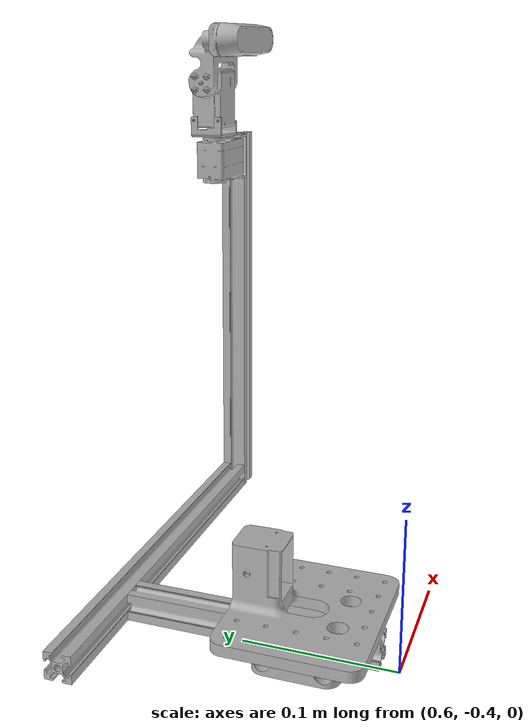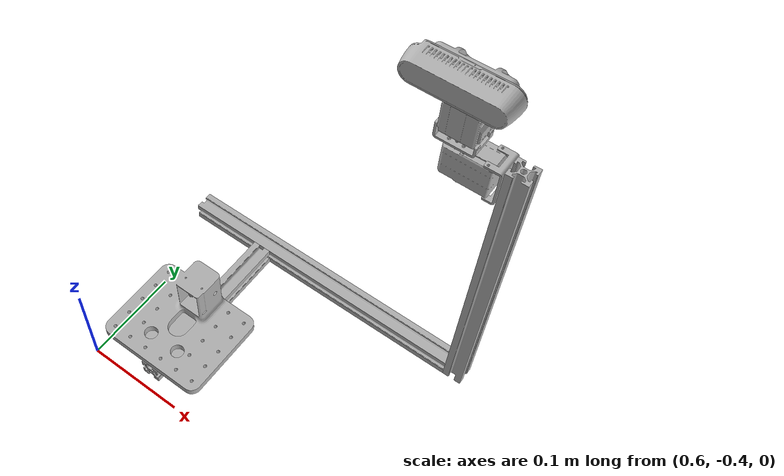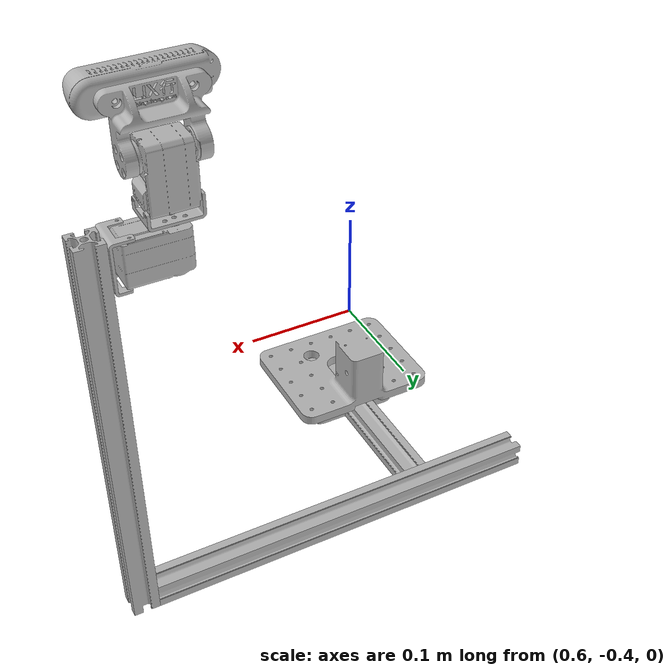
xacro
<?xml version="1.0" ?>
<robot name="mod101_harness" xmlns:xacro="http://www.ros.org/wiki/xacro">

<xacro:include filename="$(find mod101_harness)/export/materials.xacro" />
<xacro:include filename="$(find mod101_harness)/export/mod101_harness.raw.ros2control" />
<xacro:include filename="$(find mod101_harness)/export/mod101_harness.raw.gazebo" />
<link name="base_link">
  <inertial>
    <origin xyz="0.7183668847290359 -0.1898371852815478 -0.018503159635172448" rpy="0 0 0"/>
    <mass value="0.4359046662837625"/>
    <inertia ixx="3.7e-05" iyy="0.003738" izz="0.003738" ixy="-0.0" iyz="-0.0" ixz="0.0"/>
  </inertial>
  <visual>
    <origin xyz="0 0 0" rpy="0 0 0"/>
    <geometry>
      <mesh filename="file://$(find mod101_harness)/meshes/base_link.stl" scale="0.001 0.001 0.001"/>
    </geometry>
    <material name="silver"/>
  </visual>
  <collision>
    <origin xyz="0 0 0" rpy="0 0 0"/>
    <geometry>
      <mesh filename="file://$(find mod101_harness)/meshes/base_link.stl" scale="0.001 0.001 0.001"/>
    </geometry>
  </collision>
</link>

<link name="yaw_bracket_1">
  <inertial>
    <origin xyz="-0.24048767950999106 0.02833424258398279 -0.10053283234598204" rpy="0 0 0"/>
    <mass value="0.01768001501876205"/>
    <inertia ixx="4e-06" iyy="3e-06" izz="1e-06" ixy="-0.0" iyz="0.0" ixz="0.0"/>
  </inertial>
  <visual>
    <origin xyz="-1.116019 0.218172 -0.374755" rpy="0 0 0"/>
    <geometry>
      <mesh filename="file://$(find mod101_harness)/meshes/yaw_bracket_1.stl" scale="0.001 0.001 0.001"/>
    </geometry>
    <material name="silver"/>
  </visual>
  <collision>
    <origin xyz="-1.116019 0.218172 -0.374755" rpy="0 0 0"/>
    <geometry>
      <mesh filename="file://$(find mod101_harness)/meshes/yaw_bracket_1.stl" scale="0.001 0.001 0.001"/>
    </geometry>
  </collision>
</link>

<link name="yaw_servo_1">
  <inertial>
    <origin xyz="-0.01626256682350069 -0.010250178675302313 -0.015852716380520993" rpy="0 0 0"/>
    <mass value="0.2781207151088369"/>
    <inertia ixx="3.8e-05" iyy="7.1e-05" izz="6e-05" ixy="-0.0" iyz="0.0" ixz="1e-06"/>
  </inertial>
  <visual>
    <origin xyz="-0.865117 0.179587 -0.289497" rpy="0 0 0"/>
    <geometry>
      <mesh filename="file://$(find mod101_harness)/meshes/yaw_servo_1.stl" scale="0.001 0.001 0.001"/>
    </geometry>
    <material name="silver"/>
  </visual>
  <collision>
    <origin xyz="-0.865117 0.179587 -0.289497" rpy="0 0 0"/>
    <geometry>
      <mesh filename="file://$(find mod101_harness)/meshes/yaw_servo_1.stl" scale="0.001 0.001 0.001"/>
    </geometry>
  </collision>
</link>

<link name="yaw_mount_1">
  <inertial>
    <origin xyz="-0.0008752813552826977 3.643010852427686e-07 0.002835565808725571" rpy="0 0 0"/>
    <mass value="0.01768001501876205"/>
    <inertia ixx="1e-06" iyy="3e-06" izz="4e-06" ixy="0.0" iyz="-0.0" ixz="0.0"/>
  </inertial>
  <visual>
    <origin xyz="-0.836117 0.189837 -0.292697" rpy="0 0 0"/>
    <geometry>
      <mesh filename="file://$(find mod101_harness)/meshes/yaw_mount_1.stl" scale="0.001 0.001 0.001"/>
    </geometry>
    <material name="silver"/>
  </visual>
  <collision>
    <origin xyz="-0.836117 0.189837 -0.292697" rpy="0 0 0"/>
    <geometry>
      <mesh filename="file://$(find mod101_harness)/meshes/yaw_mount_1.stl" scale="0.001 0.001 0.001"/>
    </geometry>
  </collision>
</link>

<link name="pitch_servo_1">
  <inertial>
    <origin xyz="0.015852602679255368 -0.010250214439629785 0.016262453122235343" rpy="0 0 0"/>
    <mass value="0.2781207151088369"/>
    <inertia ixx="6e-05" iyy="7.1e-05" izz="3.8e-05" ixy="0.0" iyz="-0.0" ixz="1e-06"/>
  </inertial>
  <visual>
    <origin xyz="-0.819967 0.179587 -0.305947" rpy="0 0 0"/>
    <geometry>
      <mesh filename="file://$(find mod101_harness)/meshes/pitch_servo_1.stl" scale="0.001 0.001 0.001"/>
    </geometry>
    <material name="silver"/>
  </visual>
  <collision>
    <origin xyz="-0.819967 0.179587 -0.305947" rpy="0 0 0"/>
    <geometry>
      <mesh filename="file://$(find mod101_harness)/meshes/pitch_servo_1.stl" scale="0.001 0.001 0.001"/>
    </geometry>
  </collision>
</link>

<link name="pitch_link__1">
  <inertial>
    <origin xyz="-0.018217940621004014 -0.00292124752604056 0.018998095012473626" rpy="0 0 0"/>
    <mass value="0.14731389111767698"/>
    <inertia ixx="2.7e-05" iyy="7.5e-05" izz="5.8e-05" ixy="-0.0" iyz="3e-06" ixz="0.0"/>
  </inertial>
  <visual>
    <origin xyz="-0.854017 0.189837 -0.334947" rpy="0 0 0"/>
    <geometry>
      <mesh filename="file://$(find mod101_harness)/meshes/pitch_link__1.stl" scale="0.001 0.001 0.001"/>
    </geometry>
    <material name="silver"/>
  </visual>
  <collision>
    <origin xyz="-0.854017 0.189837 -0.334947" rpy="0 0 0"/>
    <geometry>
      <mesh filename="file://$(find mod101_harness)/meshes/pitch_link__1.stl" scale="0.001 0.001 0.001"/>
    </geometry>
  </collision>
</link>

<link name="realsense_1">
  <inertial>
    <origin xyz="-0.021091708113011975 -0.011657624516847098 -2.35569412897485e-05" rpy="0 0 0"/>
    <mass value="0.0720014321602746"/>
    <inertia ixx="7e-06" iyy="4.6e-05" izz="4.7e-05" ixy="-0.0" iyz="-0.0" ixz="0.0"/>
  </inertial>
  <visual>
    <origin xyz="-0.858317 0.200337 -0.367343" rpy="0 0 0"/>
    <geometry>
      <mesh filename="file://$(find mod101_harness)/meshes/realsense_1.stl" scale="0.001 0.001 0.001"/>
    </geometry>
    <material name="silver"/>
  </visual>
  <collision>
    <origin xyz="-0.858317 0.200337 -0.367343" rpy="0 0 0"/>
    <geometry>
      <mesh filename="file://$(find mod101_harness)/meshes/realsense_1.stl" scale="0.001 0.001 0.001"/>
    </geometry>
  </collision>
</link>

<link name="mod_101_adapter_1">
  <inertial>
    <origin xyz="0.3290322101958174 -0.013258210571603646 0.07482693375623085" rpy="0 0 0"/>
    <mass value="0.5806071982549674"/>
    <inertia ixx="0.000181" iyy="0.000387" izz="0.000507" ixy="0.0" iyz="0.0" ixz="1e-06"/>
  </inertial>
  <visual>
    <origin xyz="-0.320033 0.316579 0.090851" rpy="0 0 0"/>
    <geometry>
      <mesh filename="file://$(find mod101_harness)/meshes/mod_101_adapter_1.stl" scale="0.001 0.001 0.001"/>
    </geometry>
    <material name="silver"/>
  </visual>
  <collision>
    <origin xyz="-0.320033 0.316579 0.090851" rpy="0 0 0"/>
    <geometry>
      <mesh filename="file://$(find mod101_harness)/meshes/mod_101_adapter_1.stl" scale="0.001 0.001 0.001"/>
    </geometry>
  </collision>
</link>

<link name="mod_101_base_1">
  <inertial>
    <origin xyz="-0.03163848079424014 0.02870220773748383 0.009896401508084707" rpy="0 0 0"/>
    <mass value="0.8668211242819504"/>
    <inertia ixx="0.000946" iyy="0.001015" izz="0.001687" ixy="-4e-06" iyz="-0.000152" ixz="-3e-06"/>
  </inertial>
  <visual>
    <origin xyz="-0.677817 0.349837 0.005103" rpy="0 0 0"/>
    <geometry>
      <mesh filename="file://$(find mod101_harness)/meshes/mod_101_base_1.stl" scale="0.001 0.001 0.001"/>
    </geometry>
    <material name="silver"/>
  </visual>
  <collision>
    <origin xyz="-0.677817 0.349837 0.005103" rpy="0 0 0"/>
    <geometry>
      <mesh filename="file://$(find mod101_harness)/meshes/mod_101_base_1.stl" scale="0.001 0.001 0.001"/>
    </geometry>
  </collision>
</link>

<link name="tower_1">
  <inertial>
    <origin xyz="0.010000022826068933 0.009999792166619115 0.15999970226778837" rpy="0 0 0"/>
    <mass value="0.4359046662837625"/>
    <inertia ixx="0.003738" iyy="0.003738" izz="3.7e-05" ixy="0.0" iyz="0.0" ixz="0.0"/>
  </inertial>
  <visual>
    <origin xyz="-0.878367 0.199837 0.028503" rpy="0 0 0"/>
    <geometry>
      <mesh filename="file://$(find mod101_harness)/meshes/tower_1.stl" scale="0.001 0.001 0.001"/>
    </geometry>
    <material name="silver"/>
  </visual>
  <collision>
    <origin xyz="-0.878367 0.199837 0.028503" rpy="0 0 0"/>
    <geometry>
      <mesh filename="file://$(find mod101_harness)/meshes/tower_1.stl" scale="0.001 0.001 0.001"/>
    </geometry>
  </collision>
</link>

<link name="back_1">
  <inertial>
    <origin xyz="-0.2932579855783596 -0.44833419350146253 0.07234785241212485" rpy="0 0 0"/>
    <mass value="0.2451971061160035"/>
    <inertia ixx="0.000672" iyy="2.1e-05" izz="0.000672" ixy="0.0" iyz="0.0" ixz="-0.0"/>
  </inertial>
  <visual>
    <origin xyz="-0.941625 -0.158497 0.090851" rpy="0 0 0"/>
    <geometry>
      <mesh filename="file://$(find mod101_harness)/meshes/back_1.stl" scale="0.001 0.001 0.001"/>
    </geometry>
    <material name="silver"/>
  </visual>
  <collision>
    <origin xyz="-0.941625 -0.158497 0.090851" rpy="0 0 0"/>
    <geometry>
      <mesh filename="file://$(find mod101_harness)/meshes/back_1.stl" scale="0.001 0.001 0.001"/>
    </geometry>
  </collision>
</link>

<joint name="Rigid 12" type="fixed">
  <origin xyz="0.237652 -0.018335 0.403258" rpy="0 0 0"/>
  <parent link="tower_1"/>
  <child link="yaw_bracket_1"/>
</joint>

<joint name="Rigid 17" type="fixed">
  <origin xyz="-0.250902 0.038585 -0.085258" rpy="0 0 0"/>
  <parent link="yaw_bracket_1"/>
  <child link="yaw_servo_1"/>
</joint>

<joint name="Revolute 18" type="continuous">
  <origin xyz="-0.029 -0.01025 0.0032" rpy="0 0 0"/>
  <parent link="yaw_servo_1"/>
  <child link="yaw_mount_1"/>
  <axis xyz="0.0 -0.0 1.0"/>
</joint>

<joint name="Rigid 19" type="fixed">
  <origin xyz="-0.01615 0.01025 0.01325" rpy="0 0 0"/>
  <parent link="yaw_mount_1"/>
  <child link="pitch_servo_1"/>
</joint>

<joint name="Revolute 20" type="continuous">
  <origin xyz="0.03405 -0.01025 0.029" rpy="0 0 0"/>
  <parent link="pitch_servo_1"/>
  <child link="pitch_link__1"/>
  <axis xyz="-1.0 0.0 -0.0"/>
</joint>

<joint name="Rigid 21" type="fixed">
  <origin xyz="0.0043 -0.0105 0.032396" rpy="0 0 0"/>
  <parent link="pitch_link__1"/>
  <child link="realsense_1"/>
</joint>

<joint name="Rigid 28" type="fixed">
  <origin xyz="-0.621592 -0.475076 0.0" rpy="0 0 0"/>
  <parent link="back_1"/>
  <child link="mod_101_adapter_1"/>
</joint>

<joint name="Rigid 29" type="fixed">
  <origin xyz="0.357784 -0.033258 0.085748" rpy="0 0 0"/>
  <parent link="mod_101_adapter_1"/>
  <child link="mod_101_base_1"/>
</joint>

<joint name="Rigid 30" type="fixed">
  <origin xyz="0.878367 -0.199837 -0.028503" rpy="0 0 0"/>
  <parent link="base_link"/>
  <child link="tower_1"/>
</joint>

<joint name="Rigid 31" type="fixed">
  <origin xyz="0.941625 0.158497 -0.090851" rpy="0 0 0"/>
  <parent link="base_link"/>
  <child link="back_1"/>
</joint>

</robot>

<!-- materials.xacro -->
<robot name="mod101_harness" xmlns:xacro="http://www.ros.org/wiki/xacro" >

<material name="silver">
  <color rgba="0.700 0.700 0.700 1.000"/>
</material>

</robot>

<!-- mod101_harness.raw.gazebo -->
<robot name="mod101_harness" xmlns:xacro="http://www.ros.org/wiki/xacro" >

<xacro:property name="body_color" value="Gazebo/Silver" />

<gazebo reference="base_link">
  <material>${body_color}</material>
  <mu1>0.2</mu1>
  <mu2>0.2</mu2>
  <self_collide>true</self_collide>
  <gravity>true</gravity>
</gazebo>

<gazebo reference="yaw_bracket_1">
  <material>${body_color}</material>
  <mu1>0.2</mu1>
  <mu2>0.2</mu2>
  <self_collide>true</self_collide>
</gazebo>

<gazebo reference="yaw_servo_1">
  <material>${body_color}</material>
  <mu1>0.2</mu1>
  <mu2>0.2</mu2>
  <self_collide>true</self_collide>
</gazebo>

<gazebo reference="yaw_mount_1">
  <material>${body_color}</material>
  <mu1>0.2</mu1>
  <mu2>0.2</mu2>
  <self_collide>true</self_collide>
</gazebo>

<gazebo reference="pitch_servo_1">
  <material>${body_color}</material>
  <mu1>0.2</mu1>
  <mu2>0.2</mu2>
  <self_collide>true</self_collide>
</gazebo>

<gazebo reference="pitch_link__1">
  <material>${body_color}</material>
  <mu1>0.2</mu1>
  <mu2>0.2</mu2>
  <self_collide>true</self_collide>
</gazebo>

<gazebo reference="realsense_1">
  <material>${body_color}</material>
  <mu1>0.2</mu1>
  <mu2>0.2</mu2>
  <self_collide>true</self_collide>
</gazebo>

<gazebo reference="mod_101_adapter_1">
  <material>${body_color}</material>
  <mu1>0.2</mu1>
  <mu2>0.2</mu2>
  <self_collide>true</self_collide>
</gazebo>

<gazebo reference="mod_101_base_1">
  <material>${body_color}</material>
  <mu1>0.2</mu1>
  <mu2>0.2</mu2>
  <self_collide>true</self_collide>
</gazebo>

<gazebo reference="tower_1">
  <material>${body_color}</material>
  <mu1>0.2</mu1>
  <mu2>0.2</mu2>
  <self_collide>true</self_collide>
</gazebo>

<gazebo reference="back_1">
  <material>${body_color}</material>
  <mu1>0.2</mu1>
  <mu2>0.2</mu2>
  <self_collide>true</self_collide>
</gazebo>

</robot>
